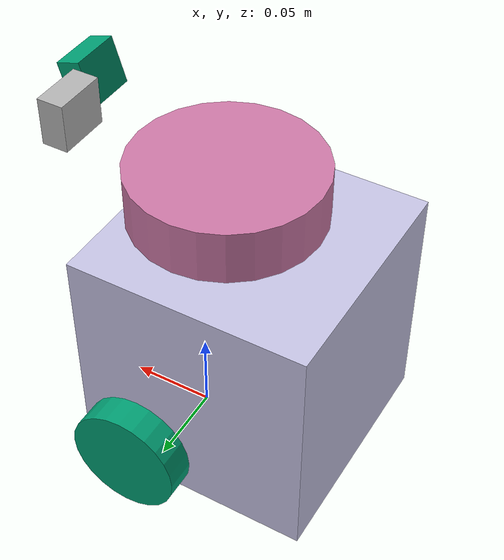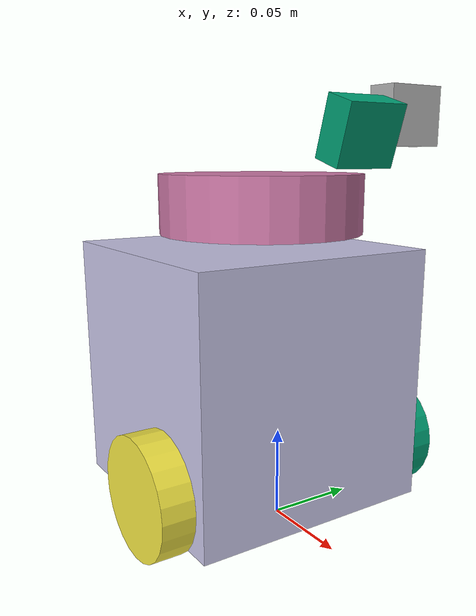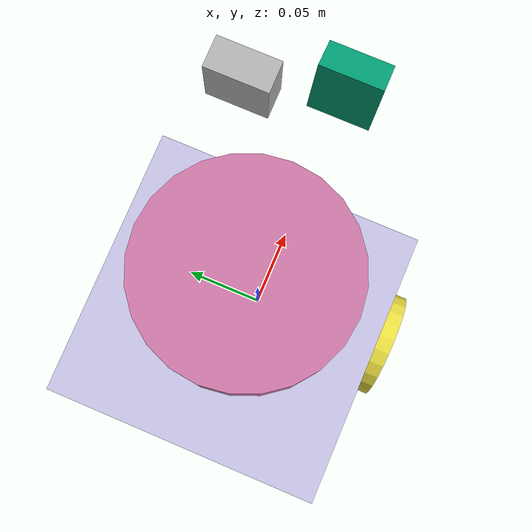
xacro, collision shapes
<?xml version="1.0" ?>
<robot name="turtlebot3_burger" xmlns:xacro="http://ros.org/wiki/xacro">
  <xacro:include filename="$(find ballast_sim)/urdf/common_properties.xacro"/>
  <xacro:include filename="$(find ballast_sim)/urdf/turtlebot3_burger_custom.gazebo.xacro"/>
  <material name="purple">
       <color rgba="0.77 0.76 0.89 1"/>
      </material>
  <link name="base_footprint_rf2o"/>

  <joint name="base_joint" type="fixed">
    <parent link="base_footprint_rf2o"/>
    <child link="base_link"/>
    <origin xyz="0.0 0.0 0.010" rpy="0 0 0"/>
  </joint>

  <link name="base_link">
    <visual>
      <origin xyz="-0.032 0 0.0" rpy="0 0 0"/>
      <geometry>
        <mesh filename="package://turtlebot3_description/meshes/bases/burger_base.stl" scale="0.001 0.001 0.001"/>
      </geometry>
      <material name="purple"/>
    </visual>

    <collision>
      <origin xyz="-0.032 0 0.070" rpy="0 0 0"/>
      <geometry>
        <box size="0.140 0.140 0.143"/>
      </geometry>
    </collision>

    <inertial>
      <origin xyz="0 0 0" rpy="0 0 0"/>
      <mass value="8.2573504e-01"/>
      <inertia ixx="2.2124416e-03" ixy="-1.2294101e-05" ixz="3.4938785e-05"
               iyy="2.1193702e-03" iyz="-5.0120904e-06"
               izz="2.0064271e-03" />
    </inertial>
  </link>

    <joint name="wheel_left_joint" type="continuous">
    <parent link="base_link"/>
    <child link="wheel_left_link"/>
    <origin xyz="0.0 0.08 0.023" rpy="-1.57 0 0"/>
    <axis xyz="0 0 1"/>
  </joint>

  <link name="wheel_left_link">
    <visual>
      <origin xyz="0 0 0" rpy="1.57 0 0"/>
      <geometry>
        <mesh filename="package://turtlebot3_description/meshes/wheels/left_tire.stl" scale="0.001 0.001 0.001"/>
      </geometry>
      <material name="dark"/>
    </visual>

    <collision>
      <origin xyz="0 0 0" rpy="0 0 0"/>
      <geometry>
        <cylinder length="0.018" radius="0.033"/>
      </geometry>
      <contact>
      <ode>
      	<kp> 1e15 </kp>
      	<kd> 1e15 </kd>
      </ode>
    </contact>
    </collision>

    <inertial>
      <origin xyz="0 0 0" />
      <mass value="2.8498940e-02" />
      <inertia ixx="1.1175580e-05" ixy="-4.2369783e-11" ixz="-5.9381719e-09"
               iyy="1.1192413e-05" iyz="-1.4400107e-11"
               izz="2.0712558e-05" />
      </inertial>
  </link>

  <joint name="wheel_right_joint" type="continuous">
    <parent link="base_link"/>
    <child link="wheel_right_link"/>
    <origin xyz="0.0 -0.080 0.023" rpy="-1.57 0 0"/>
    <axis xyz="0 0 1"/>
  </joint>

  <link name="wheel_right_link">
    <visual>
      <origin xyz="0 0 0" rpy="1.57 0 0"/>
      <geometry>
        <mesh filename="package://turtlebot3_description/meshes/wheels/right_tire.stl" scale="0.001 0.001 0.001"/>
      </geometry>
      <material name="dark"/>
    </visual>

    <collision>
      <origin xyz="0 0 0" rpy="0 0 0"/>
      <geometry>
        <cylinder length="0.018" radius="0.033"/>
      </geometry>
          <contact>
      <ode>
      	<kp> 1e15 </kp>
      	<kd> 1e15 </kd>
      </ode>
    </contact>
    </collision>

    <inertial>
      <origin xyz="0 0 0" />
      <mass value="2.8498940e-02" />
      <inertia ixx="1.1175580e-05" ixy="-4.2369783e-11" ixz="-5.9381719e-09"
               iyy="1.1192413e-05" iyz="-1.4400107e-11"
               izz="2.0712558e-05" />
      </inertial>
  </link>

  <joint name="caster_back_joint" type="fixed">
    <parent link="base_link"/>
    <child link="caster_back_link"/>
    <origin xyz="-0.081 0 -0.004" rpy="-1.57 0 0"/>
  </joint>

  <link name="caster_back_link">
    <collision>
      <origin xyz="0 0.001 0" rpy="0 0 0"/>
      <geometry>
        <box size="0.030 0.009 0.020"/>
      </geometry>
     <contact>
      <ode>
      	<kp> 1e15 </kp>
      	<kd> 1e15 </kd>
      </ode>
    </contact>
    </collision>

    <inertial>
      <origin xyz="0 0 0" />
      <mass value="0.005" />
      <inertia ixx="0.001" ixy="0.0" ixz="0.0"
               iyy="0.001" iyz="0.0"
               izz="0.001" />
    </inertial>
  </link>
  <joint name="imu_joint" type="fixed">
    <parent link="base_link"/>
    <child link="imu_link"/>
    <origin xyz="-0.032 0 0.068" rpy="0 0 0"/>
  </joint>

  <link name="imu_link"/>

  <joint name="scan_joint" type="fixed">
    <parent link="base_link"/>
    <child link="base_scan"/>
    <origin xyz="-0.032 0 0.172" rpy="0 0 0"/>
  </joint>

  <link name="base_scan">
    <visual>
      <origin xyz="0 0 0.0" rpy="0 0 0"/>
      <geometry>
        <mesh filename="package://turtlebot3_description/meshes/sensors/lds.stl" scale="0.001 0.001 0.001"/>
      </geometry>
      <material name="dark"/>
    </visual>

    <collision>
      <origin xyz="0.015 0 -0.0065" rpy="0 0 0"/>
      <geometry>
        <cylinder length="0.0315" radius="0.055"/>
      </geometry>
    </collision>

    <inertial>
      <mass value="0.114" />
      <origin xyz="0 0 0" />
      <inertia ixx="0.001" ixy="0.0" ixz="0.0"
               iyy="0.001" iyz="0.0"
               izz="0.001" />
    </inertial>
  </link>

 <joint name="camera_joint" type="fixed">
  <origin xyz="0.055 0.032 0.208" rpy="0 0 0"/>
    <parent link="base_link"/>
    <child link="camera_link"/>
  </joint>

  <link name="camera_link">
    <collision>
      <origin xyz="0.0 0.0 0.0" rpy="0 0 0"/>
      <geometry>
        <box size="0.015 0.030 0.027"/>
      </geometry>
    </collision>
  </link>

  <joint name="camera_rgb_joint" type="fixed">
    <origin xyz="0.0 -0.032 0.0" rpy="0 0 0"/>
    <parent link="camera_link"/>
    <child link="camera_rgb_frame"/>
  </joint>
  <link name="camera_rgb_frame"/>

  <joint name="camera_rgb_optical_joint" type="fixed">
    <origin xyz="0 0 0" rpy="-1.57 0 -1.57"/>
    <parent link="camera_rgb_frame"/>
    <child link="camera_rgb_optical_frame"/>
  </joint>
  <link name="camera_rgb_optical_frame"/>

   <joint name="flashlight_joint" type="fixed">
	<origin xyz="0.073 -0.011 0.2" rpy="0 0.3 0"/>
    <parent link="base_link"/>
    <child link="flashlight_link"/>
  </joint>
    <link name="flashlight_link">
    <collision>
      <origin xyz="0 0.0 0." rpy="0 0 0"/>
      <geometry>
        <box size="0.015 0.030 0.027"/>
      </geometry>
    </collision>
       <visual>
      <origin xyz="0 0 0.0" rpy="0 0 0"/>
      <geometry>
        <box size="0.015 0.030 0.027"/>
      </geometry>
      <material name="dark"/>
    </visual>
  </link>
</robot>
